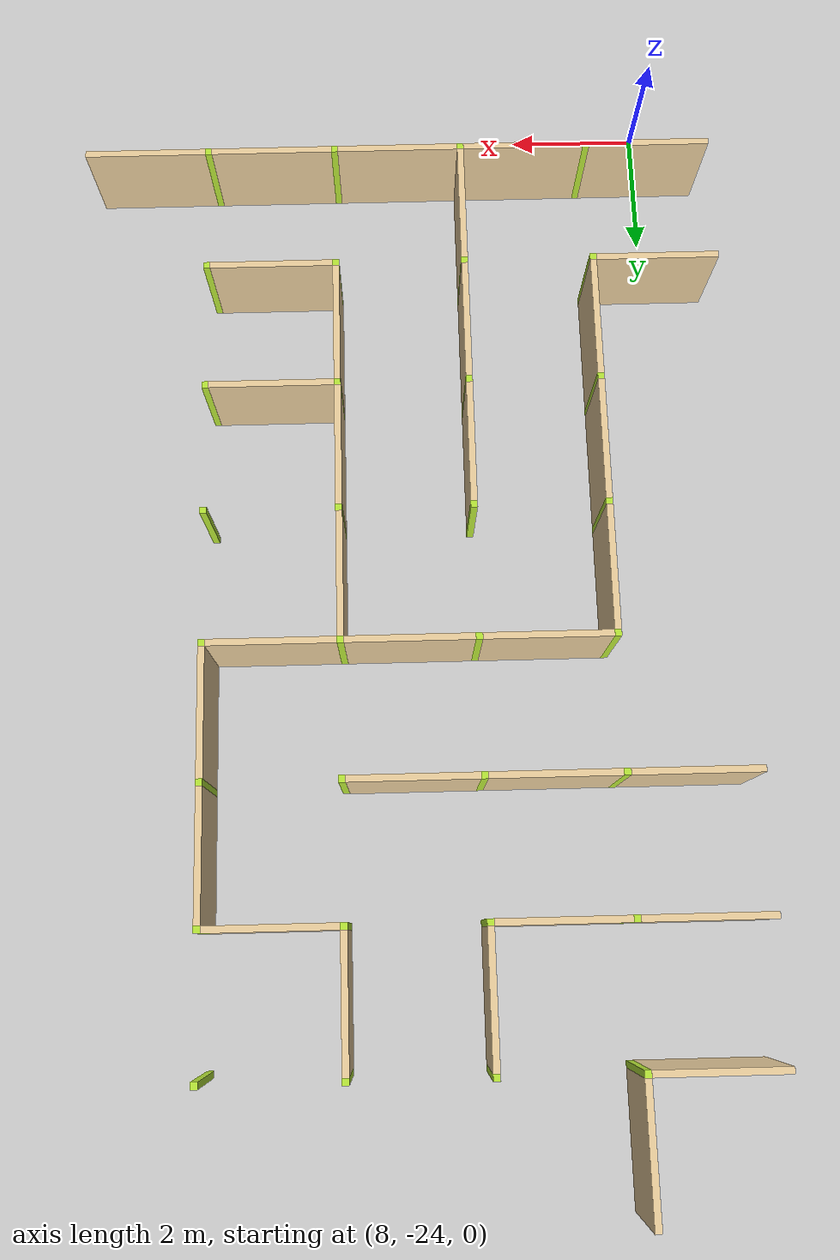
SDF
<sdf version="1.4">
 <world name="maze_world">
  <model name="ground">
   <static>true</static>
   <link name="ground_link">
    <collision name="collision1"><geometry><plane><normal>0 0 1</normal></plane></geometry></collision>
    <visual name="visual1"><geometry><plane><normal>0 0 1</normal><size>100 100</size></plane></geometry></visual>
   </link>
  </model>
  <model name="Untitled">
   <link name="Wall_8_7_v">
    <collision name="Wall_0_Collision">
     <geometry><box><size>1.9 0.1 1.5</size></box></geometry>
     <pose>0 0 0.75 0 -0 0</pose>
    </collision>
    <visual name="Wall_0_Visual">
     <pose>0 0 0.75 0 -0 0</pose>
     <geometry><box><size>1.9 0.1 1.5</size></box></geometry>
     <material>
      <script><uri>file://media/materials/scripts/gazebo.material</uri><name>Gazebo/Grey</name></script>
      <ambient>0.921569 0.807843 0.615686 1</ambient>
     </material>
     <meta><layer>0</layer></meta>
    </visual>
    <pose>9 -8.0 0 0 -0 1.5708</pose>
    <sensor name="my_contact" type="contact">
     <contact><collision>box_collision</collision><topic>/rover_collision</topic></contact>
    </sensor>
   </link>
   <link name="Wall_7_8_h">
    <collision name="Wall_0_Collision">
     <geometry><box><size>1.9 0.1 1.5</size></box></geometry>
     <pose>0 0 0.75 0 -0 0</pose>
    </collision>
    <visual name="Wall_0_Visual">
     <pose>0 0 0.75 0 -0 0</pose>
     <geometry><box><size>1.9 0.1 1.5</size></box></geometry>
     <material>
      <script><uri>file://media/materials/scripts/gazebo.material</uri><name>Gazebo/Grey</name></script>
      <ambient>0.921569 0.807843 0.615686 1</ambient>
     </material>
     <meta><layer>0</layer></meta>
    </visual>
    <pose>8.0 -9 0 0 -0 0</pose>
    <sensor name="my_contact" type="contact">
     <contact><collision>box_collision</collision><topic>/rover_collision</topic></contact>
    </sensor>
   </link>
   <link name="Joint_9_-9">
    <collision name="Wall_2_Collision">
     <geometry><box><size>0.1 0.1 1.5</size></box></geometry>
     <pose>0 0 0.75 0 -0 0</pose>
    </collision>
    <visual name="Wall_2_Visual">
     <pose>0 0 0.75 0 -0 0</pose>
     <geometry><box><size>0.1 0.1 1.5</size></box></geometry>
     <material>
      <script><uri>file://media/materials/scripts/gazebo.material</uri><name>Gazebo/Grey</name></script>
      <ambient>0.721569 0.907843 0.215686 1</ambient>
     </material>
     <meta><layer>0</layer></meta>
    </visual>
    <pose>9 -9 0 0 -0 0</pose>
    <sensor name="my_contact" type="contact">
     <contact><collision>box_collision</collision><topic>/rover_collision</topic></contact>
    </sensor>
   </link>
   <link name="Wall_9_8_v">
    <collision name="Wall_0_Collision">
     <geometry><box><size>1.9 0.1 1.5</size></box></geometry>
     <pose>0 0 0.75 0 -0 0</pose>
    </collision>
    <visual name="Wall_0_Visual">
     <pose>0 0 0.75 0 -0 0</pose>
     <geometry><box><size>1.9 0.1 1.5</size></box></geometry>
     <material>
      <script><uri>file://media/materials/scripts/gazebo.material</uri><name>Gazebo/Grey</name></script>
      <ambient>0.921569 0.807843 0.615686 1</ambient>
     </material>
     <meta><layer>0</layer></meta>
    </visual>
    <pose>11 -10.0 0 0 -0 1.5708</pose>
    <sensor name="my_contact" type="contact">
     <contact><collision>box_collision</collision><topic>/rover_collision</topic></contact>
    </sensor>
   </link>
   <link name="Joint_11_-9">
    <collision name="Wall_2_Collision">
     <geometry><box><size>0.1 0.1 1.5</size></box></geometry>
     <pose>0 0 0.75 0 -0 0</pose>
    </collision>
    <visual name="Wall_2_Visual">
     <pose>0 0 0.75 0 -0 0</pose>
     <geometry><box><size>0.1 0.1 1.5</size></box></geometry>
     <material>
      <script><uri>file://media/materials/scripts/gazebo.material</uri><name>Gazebo/Grey</name></script>
      <ambient>0.721569 0.907843 0.215686 1</ambient>
     </material>
     <meta><layer>0</layer></meta>
    </visual>
    <pose>11 -9 0 0 -0 0</pose>
    <sensor name="my_contact" type="contact">
     <contact><collision>box_collision</collision><topic>/rover_collision</topic></contact>
    </sensor>
   </link>
   <link name="Wall_10_8_v">
    <collision name="Wall_0_Collision">
     <geometry><box><size>1.9 0.1 1.5</size></box></geometry>
     <pose>0 0 0.75 0 -0 0</pose>
    </collision>
    <visual name="Wall_0_Visual">
     <pose>0 0 0.75 0 -0 0</pose>
     <geometry><box><size>1.9 0.1 1.5</size></box></geometry>
     <material>
      <script><uri>file://media/materials/scripts/gazebo.material</uri><name>Gazebo/Grey</name></script>
      <ambient>0.921569 0.807843 0.615686 1</ambient>
     </material>
     <meta><layer>0</layer></meta>
    </visual>
    <pose>13 -10.0 0 0 -0 1.5708</pose>
    <sensor name="my_contact" type="contact">
     <contact><collision>box_collision</collision><topic>/rover_collision</topic></contact>
    </sensor>
   </link>
   <link name="Joint_13_-9">
    <collision name="Wall_2_Collision">
     <geometry><box><size>0.1 0.1 1.5</size></box></geometry>
     <pose>0 0 0.75 0 -0 0</pose>
    </collision>
    <visual name="Wall_2_Visual">
     <pose>0 0 0.75 0 -0 0</pose>
     <geometry><box><size>0.1 0.1 1.5</size></box></geometry>
     <material>
      <script><uri>file://media/materials/scripts/gazebo.material</uri><name>Gazebo/Grey</name></script>
      <ambient>0.721569 0.907843 0.215686 1</ambient>
     </material>
     <meta><layer>0</layer></meta>
    </visual>
    <pose>13 -9 0 0 -0 0</pose>
    <sensor name="my_contact" type="contact">
     <contact><collision>box_collision</collision><topic>/rover_collision</topic></contact>
    </sensor>
   </link>
   <link name="Joint_15_-9">
    <collision name="Wall_2_Collision">
     <geometry><box><size>0.1 0.1 1.5</size></box></geometry>
     <pose>0 0 0.75 0 -0 0</pose>
    </collision>
    <visual name="Wall_2_Visual">
     <pose>0 0 0.75 0 -0 0</pose>
     <geometry><box><size>0.1 0.1 1.5</size></box></geometry>
     <material>
      <script><uri>file://media/materials/scripts/gazebo.material</uri><name>Gazebo/Grey</name></script>
      <ambient>0.721569 0.907843 0.215686 1</ambient>
     </material>
     <meta><layer>0</layer></meta>
    </visual>
    <pose>15 -9 0 0 -0 0</pose>
    <sensor name="my_contact" type="contact">
     <contact><collision>box_collision</collision><topic>/rover_collision</topic></contact>
    </sensor>
   </link>
   <link name="Wall_7_9_h">
    <collision name="Wall_0_Collision">
     <geometry><box><size>1.9 0.1 1.5</size></box></geometry>
     <pose>0 0 0.75 0 -0 0</pose>
    </collision>
    <visual name="Wall_0_Visual">
     <pose>0 0 0.75 0 -0 0</pose>
     <geometry><box><size>1.9 0.1 1.5</size></box></geometry>
     <material>
      <script><uri>file://media/materials/scripts/gazebo.material</uri><name>Gazebo/Grey</name></script>
      <ambient>0.921569 0.807843 0.615686 1</ambient>
     </material>
     <meta><layer>0</layer></meta>
    </visual>
    <pose>8.0 -11 0 0 -0 0</pose>
    <sensor name="my_contact" type="contact">
     <contact><collision>box_collision</collision><topic>/rover_collision</topic></contact>
    </sensor>
   </link>
   <link name="Wall_8_9_h">
    <collision name="Wall_0_Collision">
     <geometry><box><size>1.9 0.1 1.5</size></box></geometry>
     <pose>0 0 0.75 0 -0 0</pose>
    </collision>
    <visual name="Wall_0_Visual">
     <pose>0 0 0.75 0 -0 0</pose>
     <geometry><box><size>1.9 0.1 1.5</size></box></geometry>
     <material>
      <script><uri>file://media/materials/scripts/gazebo.material</uri><name>Gazebo/Grey</name></script>
      <ambient>0.921569 0.807843 0.615686 1</ambient>
     </material>
     <meta><layer>0</layer></meta>
    </visual>
    <pose>10.0 -11 0 0 -0 0</pose>
    <sensor name="my_contact" type="contact">
     <contact><collision>box_collision</collision><topic>/rover_collision</topic></contact>
    </sensor>
   </link>
   <link name="Joint_9_-11">
    <collision name="Wall_2_Collision">
     <geometry><box><size>0.1 0.1 1.5</size></box></geometry>
     <pose>0 0 0.75 0 -0 0</pose>
    </collision>
    <visual name="Wall_2_Visual">
     <pose>0 0 0.75 0 -0 0</pose>
     <geometry><box><size>0.1 0.1 1.5</size></box></geometry>
     <material>
      <script><uri>file://media/materials/scripts/gazebo.material</uri><name>Gazebo/Grey</name></script>
      <ambient>0.721569 0.907843 0.215686 1</ambient>
     </material>
     <meta><layer>0</layer></meta>
    </visual>
    <pose>9 -11 0 0 -0 0</pose>
    <sensor name="my_contact" type="contact">
     <contact><collision>box_collision</collision><topic>/rover_collision</topic></contact>
    </sensor>
   </link>
   <link name="Joint_11_-11">
    <collision name="Wall_2_Collision">
     <geometry><box><size>0.1 0.1 1.5</size></box></geometry>
     <pose>0 0 0.75 0 -0 0</pose>
    </collision>
    <visual name="Wall_2_Visual">
     <pose>0 0 0.75 0 -0 0</pose>
     <geometry><box><size>0.1 0.1 1.5</size></box></geometry>
     <material>
      <script><uri>file://media/materials/scripts/gazebo.material</uri><name>Gazebo/Grey</name></script>
      <ambient>0.721569 0.907843 0.215686 1</ambient>
     </material>
     <meta><layer>0</layer></meta>
    </visual>
    <pose>11 -11 0 0 -0 0</pose>
    <sensor name="my_contact" type="contact">
     <contact><collision>box_collision</collision><topic>/rover_collision</topic></contact>
    </sensor>
   </link>
   <link name="Wall_10_9_h">
    <collision name="Wall_0_Collision">
     <geometry><box><size>1.9 0.1 1.5</size></box></geometry>
     <pose>0 0 0.75 0 -0 0</pose>
    </collision>
    <visual name="Wall_0_Visual">
     <pose>0 0 0.75 0 -0 0</pose>
     <geometry><box><size>1.9 0.1 1.5</size></box></geometry>
     <material>
      <script><uri>file://media/materials/scripts/gazebo.material</uri><name>Gazebo/Grey</name></script>
      <ambient>0.921569 0.807843 0.615686 1</ambient>
     </material>
     <meta><layer>0</layer></meta>
    </visual>
    <pose>14.0 -11 0 0 -0 0</pose>
    <sensor name="my_contact" type="contact">
     <contact><collision>box_collision</collision><topic>/rover_collision</topic></contact>
    </sensor>
   </link>
   <link name="Joint_13_-11">
    <collision name="Wall_2_Collision">
     <geometry><box><size>0.1 0.1 1.5</size></box></geometry>
     <pose>0 0 0.75 0 -0 0</pose>
    </collision>
    <visual name="Wall_2_Visual">
     <pose>0 0 0.75 0 -0 0</pose>
     <geometry><box><size>0.1 0.1 1.5</size></box></geometry>
     <material>
      <script><uri>file://media/materials/scripts/gazebo.material</uri><name>Gazebo/Grey</name></script>
      <ambient>0.721569 0.907843 0.215686 1</ambient>
     </material>
     <meta><layer>0</layer></meta>
    </visual>
    <pose>13 -11 0 0 -0 0</pose>
    <sensor name="my_contact" type="contact">
     <contact><collision>box_collision</collision><topic>/rover_collision</topic></contact>
    </sensor>
   </link>
   <link name="Wall_11_9_v">
    <collision name="Wall_0_Collision">
     <geometry><box><size>1.9 0.1 1.5</size></box></geometry>
     <pose>0 0 0.75 0 -0 0</pose>
    </collision>
    <visual name="Wall_0_Visual">
     <pose>0 0 0.75 0 -0 0</pose>
     <geometry><box><size>1.9 0.1 1.5</size></box></geometry>
     <material>
      <script><uri>file://media/materials/scripts/gazebo.material</uri><name>Gazebo/Grey</name></script>
      <ambient>0.921569 0.807843 0.615686 1</ambient>
     </material>
     <meta><layer>0</layer></meta>
    </visual>
    <pose>15 -12.0 0 0 -0 1.5708</pose>
    <sensor name="my_contact" type="contact">
     <contact><collision>box_collision</collision><topic>/rover_collision</topic></contact>
    </sensor>
   </link>
   <link name="Joint_15_-11">
    <collision name="Wall_2_Collision">
     <geometry><box><size>0.1 0.1 1.5</size></box></geometry>
     <pose>0 0 0.75 0 -0 0</pose>
    </collision>
    <visual name="Wall_2_Visual">
     <pose>0 0 0.75 0 -0 0</pose>
     <geometry><box><size>0.1 0.1 1.5</size></box></geometry>
     <material>
      <script><uri>file://media/materials/scripts/gazebo.material</uri><name>Gazebo/Grey</name></script>
      <ambient>0.721569 0.907843 0.215686 1</ambient>
     </material>
     <meta><layer>0</layer></meta>
    </visual>
    <pose>15 -11 0 0 -0 0</pose>
    <sensor name="my_contact" type="contact">
     <contact><collision>box_collision</collision><topic>/rover_collision</topic></contact>
    </sensor>
   </link>
   <link name="Wall_7_10_h">
    <collision name="Wall_0_Collision">
     <geometry><box><size>1.9 0.1 1.5</size></box></geometry>
     <pose>0 0 0.75 0 -0 0</pose>
    </collision>
    <visual name="Wall_0_Visual">
     <pose>0 0 0.75 0 -0 0</pose>
     <geometry><box><size>1.9 0.1 1.5</size></box></geometry>
     <material>
      <script><uri>file://media/materials/scripts/gazebo.material</uri><name>Gazebo/Grey</name></script>
      <ambient>0.921569 0.807843 0.615686 1</ambient>
     </material>
     <meta><layer>0</layer></meta>
    </visual>
    <pose>8.0 -13 0 0 -0 0</pose>
    <sensor name="my_contact" type="contact">
     <contact><collision>box_collision</collision><topic>/rover_collision</topic></contact>
    </sensor>
   </link>
   <link name="Wall_8_10_h">
    <collision name="Wall_0_Collision">
     <geometry><box><size>1.9 0.1 1.5</size></box></geometry>
     <pose>0 0 0.75 0 -0 0</pose>
    </collision>
    <visual name="Wall_0_Visual">
     <pose>0 0 0.75 0 -0 0</pose>
     <geometry><box><size>1.9 0.1 1.5</size></box></geometry>
     <material>
      <script><uri>file://media/materials/scripts/gazebo.material</uri><name>Gazebo/Grey</name></script>
      <ambient>0.921569 0.807843 0.615686 1</ambient>
     </material>
     <meta><layer>0</layer></meta>
    </visual>
    <pose>10.0 -13 0 0 -0 0</pose>
    <sensor name="my_contact" type="contact">
     <contact><collision>box_collision</collision><topic>/rover_collision</topic></contact>
    </sensor>
   </link>
   <link name="Joint_9_-13">
    <collision name="Wall_2_Collision">
     <geometry><box><size>0.1 0.1 1.5</size></box></geometry>
     <pose>0 0 0.75 0 -0 0</pose>
    </collision>
    <visual name="Wall_2_Visual">
     <pose>0 0 0.75 0 -0 0</pose>
     <geometry><box><size>0.1 0.1 1.5</size></box></geometry>
     <material>
      <script><uri>file://media/materials/scripts/gazebo.material</uri><name>Gazebo/Grey</name></script>
      <ambient>0.721569 0.907843 0.215686 1</ambient>
     </material>
     <meta><layer>0</layer></meta>
    </visual>
    <pose>9 -13 0 0 -0 0</pose>
    <sensor name="my_contact" type="contact">
     <contact><collision>box_collision</collision><topic>/rover_collision</topic></contact>
    </sensor>
   </link>
   <link name="Wall_9_10_h">
    <collision name="Wall_0_Collision">
     <geometry><box><size>1.9 0.1 1.5</size></box></geometry>
     <pose>0 0 0.75 0 -0 0</pose>
    </collision>
    <visual name="Wall_0_Visual">
     <pose>0 0 0.75 0 -0 0</pose>
     <geometry><box><size>1.9 0.1 1.5</size></box></geometry>
     <material>
      <script><uri>file://media/materials/scripts/gazebo.material</uri><name>Gazebo/Grey</name></script>
      <ambient>0.921569 0.807843 0.615686 1</ambient>
     </material>
     <meta><layer>0</layer></meta>
    </visual>
    <pose>12.0 -13 0 0 -0 0</pose>
    <sensor name="my_contact" type="contact">
     <contact><collision>box_collision</collision><topic>/rover_collision</topic></contact>
    </sensor>
   </link>
   <link name="Joint_11_-13">
    <collision name="Wall_2_Collision">
     <geometry><box><size>0.1 0.1 1.5</size></box></geometry>
     <pose>0 0 0.75 0 -0 0</pose>
    </collision>
    <visual name="Wall_2_Visual">
     <pose>0 0 0.75 0 -0 0</pose>
     <geometry><box><size>0.1 0.1 1.5</size></box></geometry>
     <material>
      <script><uri>file://media/materials/scripts/gazebo.material</uri><name>Gazebo/Grey</name></script>
      <ambient>0.721569 0.907843 0.215686 1</ambient>
     </material>
     <meta><layer>0</layer></meta>
    </visual>
    <pose>11 -13 0 0 -0 0</pose>
    <sensor name="my_contact" type="contact">
     <contact><collision>box_collision</collision><topic>/rover_collision</topic></contact>
    </sensor>
   </link>
   <link name="Joint_13_-13">
    <collision name="Wall_2_Collision">
     <geometry><box><size>0.1 0.1 1.5</size></box></geometry>
     <pose>0 0 0.75 0 -0 0</pose>
    </collision>
    <visual name="Wall_2_Visual">
     <pose>0 0 0.75 0 -0 0</pose>
     <geometry><box><size>0.1 0.1 1.5</size></box></geometry>
     <material>
      <script><uri>file://media/materials/scripts/gazebo.material</uri><name>Gazebo/Grey</name></script>
      <ambient>0.721569 0.907843 0.215686 1</ambient>
     </material>
     <meta><layer>0</layer></meta>
    </visual>
    <pose>13 -13 0 0 -0 0</pose>
    <sensor name="my_contact" type="contact">
     <contact><collision>box_collision</collision><topic>/rover_collision</topic></contact>
    </sensor>
   </link>
   <link name="Wall_11_10_v">
    <collision name="Wall_0_Collision">
     <geometry><box><size>1.9 0.1 1.5</size></box></geometry>
     <pose>0 0 0.75 0 -0 0</pose>
    </collision>
    <visual name="Wall_0_Visual">
     <pose>0 0 0.75 0 -0 0</pose>
     <geometry><box><size>1.9 0.1 1.5</size></box></geometry>
     <material>
      <script><uri>file://media/materials/scripts/gazebo.material</uri><name>Gazebo/Grey</name></script>
      <ambient>0.921569 0.807843 0.615686 1</ambient>
     </material>
     <meta><layer>0</layer></meta>
    </visual>
    <pose>15 -14.0 0 0 -0 1.5708</pose>
    <sensor name="my_contact" type="contact">
     <contact><collision>box_collision</collision><topic>/rover_collision</topic></contact>
    </sensor>
   </link>
   <link name="Joint_15_-13">
    <collision name="Wall_2_Collision">
     <geometry><box><size>0.1 0.1 1.5</size></box></geometry>
     <pose>0 0 0.75 0 -0 0</pose>
    </collision>
    <visual name="Wall_2_Visual">
     <pose>0 0 0.75 0 -0 0</pose>
     <geometry><box><size>0.1 0.1 1.5</size></box></geometry>
     <material>
      <script><uri>file://media/materials/scripts/gazebo.material</uri><name>Gazebo/Grey</name></script>
      <ambient>0.721569 0.907843 0.215686 1</ambient>
     </material>
     <meta><layer>0</layer></meta>
    </visual>
    <pose>15 -13 0 0 -0 0</pose>
    <sensor name="my_contact" type="contact">
     <contact><collision>box_collision</collision><topic>/rover_collision</topic></contact>
    </sensor>
   </link>
   <link name="Wall_8_11_h">
    <collision name="Wall_0_Collision">
     <geometry><box><size>1.9 0.1 1.5</size></box></geometry>
     <pose>0 0 0.75 0 -0 0</pose>
    </collision>
    <visual name="Wall_0_Visual">
     <pose>0 0 0.75 0 -0 0</pose>
     <geometry><box><size>1.9 0.1 1.5</size></box></geometry>
     <material>
      <script><uri>file://media/materials/scripts/gazebo.material</uri><name>Gazebo/Grey</name></script>
      <ambient>0.921569 0.807843 0.615686 1</ambient>
     </material>
     <meta><layer>0</layer></meta>
    </visual>
    <pose>10.0 -15 0 0 -0 0</pose>
    <sensor name="my_contact" type="contact">
     <contact><collision>box_collision</collision><topic>/rover_collision</topic></contact>
    </sensor>
   </link>
   <link name="Wall_8_11_v">
    <collision name="Wall_0_Collision">
     <geometry><box><size>1.9 0.1 1.5</size></box></geometry>
     <pose>0 0 0.75 0 -0 0</pose>
    </collision>
    <visual name="Wall_0_Visual">
     <pose>0 0 0.75 0 -0 0</pose>
     <geometry><box><size>1.9 0.1 1.5</size></box></geometry>
     <material>
      <script><uri>file://media/materials/scripts/gazebo.material</uri><name>Gazebo/Grey</name></script>
      <ambient>0.921569 0.807843 0.615686 1</ambient>
     </material>
     <meta><layer>0</layer></meta>
    </visual>
    <pose>9 -16.0 0 0 -0 1.5708</pose>
    <sensor name="my_contact" type="contact">
     <contact><collision>box_collision</collision><topic>/rover_collision</topic></contact>
    </sensor>
   </link>
   <link name="Joint_9_-15">
    <collision name="Wall_2_Collision">
     <geometry><box><size>0.1 0.1 1.5</size></box></geometry>
     <pose>0 0 0.75 0 -0 0</pose>
    </collision>
    <visual name="Wall_2_Visual">
     <pose>0 0 0.75 0 -0 0</pose>
     <geometry><box><size>0.1 0.1 1.5</size></box></geometry>
     <material>
      <script><uri>file://media/materials/scripts/gazebo.material</uri><name>Gazebo/Grey</name></script>
      <ambient>0.721569 0.907843 0.215686 1</ambient>
     </material>
     <meta><layer>0</layer></meta>
    </visual>
    <pose>9 -15 0 0 -0 0</pose>
    <sensor name="my_contact" type="contact">
     <contact><collision>box_collision</collision><topic>/rover_collision</topic></contact>
    </sensor>
   </link>
   <link name="Wall_9_11_h">
    <collision name="Wall_0_Collision">
     <geometry><box><size>1.9 0.1 1.5</size></box></geometry>
     <pose>0 0 0.75 0 -0 0</pose>
    </collision>
    <visual name="Wall_0_Visual">
     <pose>0 0 0.75 0 -0 0</pose>
     <geometry><box><size>1.9 0.1 1.5</size></box></geometry>
     <material>
      <script><uri>file://media/materials/scripts/gazebo.material</uri><name>Gazebo/Grey</name></script>
      <ambient>0.921569 0.807843 0.615686 1</ambient>
     </material>
     <meta><layer>0</layer></meta>
    </visual>
    <pose>12.0 -15 0 0 -0 0</pose>
    <sensor name="my_contact" type="contact">
     <contact><collision>box_collision</collision><topic>/rover_collision</topic></contact>
    </sensor>
   </link>
   <link name="Joint_11_-15">
    <collision name="Wall_2_Collision">
     <geometry><box><size>0.1 0.1 1.5</size></box></geometry>
     <pose>0 0 0.75 0 -0 0</pose>
    </collision>
    <visual name="Wall_2_Visual">
     <pose>0 0 0.75 0 -0 0</pose>
     <geometry><box><size>0.1 0.1 1.5</size></box></geometry>
     <material>
      <script><uri>file://media/materials/scripts/gazebo.material</uri><name>Gazebo/Grey</name></script>
      <ambient>0.721569 0.907843 0.215686 1</ambient>
     </material>
     <meta><layer>0</layer></meta>
    </visual>
    <pose>11 -15 0 0 -0 0</pose>
    <sensor name="my_contact" type="contact">
     <contact><collision>box_collision</collision><topic>/rover_collision</topic></contact>
    </sensor>
   </link>
   <link name="Wall_10_11_h">
    <collision name="Wall_0_Collision">
     <geometry><box><size>1.9 0.1 1.5</size></box></geometry>
     <pose>0 0 0.75 0 -0 0</pose>
    </collision>
    <visual name="Wall_0_Visual">
     <pose>0 0 0.75 0 -0 0</pose>
     <geometry><box><size>1.9 0.1 1.5</size></box></geometry>
     <material>
      <script><uri>file://media/materials/scripts/gazebo.material</uri><name>Gazebo/Grey</name></script>
      <ambient>0.921569 0.807843 0.615686 1</ambient>
     </material>
     <meta><layer>0</layer></meta>
    </visual>
    <pose>14.0 -15 0 0 -0 0</pose>
    <sensor name="my_contact" type="contact">
     <contact><collision>box_collision</collision><topic>/rover_collision</topic></contact>
    </sensor>
   </link>
   <link name="Wall_10_11_v">
    <collision name="Wall_0_Collision">
     <geometry><box><size>1.9 0.1 1.5</size></box></geometry>
     <pose>0 0 0.75 0 -0 0</pose>
    </collision>
    <visual name="Wall_0_Visual">
     <pose>0 0 0.75 0 -0 0</pose>
     <geometry><box><size>1.9 0.1 1.5</size></box></geometry>
     <material>
      <script><uri>file://media/materials/scripts/gazebo.material</uri><name>Gazebo/Grey</name></script>
      <ambient>0.921569 0.807843 0.615686 1</ambient>
     </material>
     <meta><layer>0</layer></meta>
    </visual>
    <pose>13 -16.0 0 0 -0 1.5708</pose>
    <sensor name="my_contact" type="contact">
     <contact><collision>box_collision</collision><topic>/rover_collision</topic></contact>
    </sensor>
   </link>
   <link name="Joint_13_-15">
    <collision name="Wall_2_Collision">
     <geometry><box><size>0.1 0.1 1.5</size></box></geometry>
     <pose>0 0 0.75 0 -0 0</pose>
    </collision>
    <visual name="Wall_2_Visual">
     <pose>0 0 0.75 0 -0 0</pose>
     <geometry><box><size>0.1 0.1 1.5</size></box></geometry>
     <material>
      <script><uri>file://media/materials/scripts/gazebo.material</uri><name>Gazebo/Grey</name></script>
      <ambient>0.721569 0.907843 0.215686 1</ambient>
     </material>
     <meta><layer>0</layer></meta>
    </visual>
    <pose>13 -15 0 0 -0 0</pose>
    <sensor name="my_contact" type="contact">
     <contact><collision>box_collision</collision><topic>/rover_collision</topic></contact>
    </sensor>
   </link>
   <link name="Joint_15_-15">
    <collision name="Wall_2_Collision">
     <geometry><box><size>0.1 0.1 1.5</size></box></geometry>
     <pose>0 0 0.75 0 -0 0</pose>
    </collision>
    <visual name="Wall_2_Visual">
     <pose>0 0 0.75 0 -0 0</pose>
     <geometry><box><size>0.1 0.1 1.5</size></box></geometry>
     <material>
      <script><uri>file://media/materials/scripts/gazebo.material</uri><name>Gazebo/Grey</name></script>
      <ambient>0.721569 0.907843 0.215686 1</ambient>
     </material>
     <meta><layer>0</layer></meta>
    </visual>
    <pose>15 -15 0 0 -0 0</pose>
    <sensor name="my_contact" type="contact">
     <contact><collision>box_collision</collision><topic>/rover_collision</topic></contact>
    </sensor>
   </link>
   <link name="Wall_8_12_v">
    <collision name="Wall_0_Collision">
     <geometry><box><size>1.9 0.1 1.5</size></box></geometry>
     <pose>0 0 0.75 0 -0 0</pose>
    </collision>
    <visual name="Wall_0_Visual">
     <pose>0 0 0.75 0 -0 0</pose>
     <geometry><box><size>1.9 0.1 1.5</size></box></geometry>
     <material>
      <script><uri>file://media/materials/scripts/gazebo.material</uri><name>Gazebo/Grey</name></script>
      <ambient>0.921569 0.807843 0.615686 1</ambient>
     </material>
     <meta><layer>0</layer></meta>
    </visual>
    <pose>9 -18.0 0 0 -0 1.5708</pose>
    <sensor name="my_contact" type="contact">
     <contact><collision>box_collision</collision><topic>/rover_collision</topic></contact>
    </sensor>
   </link>
   <link name="Joint_9_-17">
    <collision name="Wall_2_Collision">
     <geometry><box><size>0.1 0.1 1.5</size></box></geometry>
     <pose>0 0 0.75 0 -0 0</pose>
    </collision>
    <visual name="Wall_2_Visual">
     <pose>0 0 0.75 0 -0 0</pose>
     <geometry><box><size>0.1 0.1 1.5</size></box></geometry>
     <material>
      <script><uri>file://media/materials/scripts/gazebo.material</uri><name>Gazebo/Grey</name></script>
      <ambient>0.721569 0.907843 0.215686 1</ambient>
     </material>
     <meta><layer>0</layer></meta>
    </visual>
    <pose>9 -17 0 0 -0 0</pose>
    <sensor name="my_contact" type="contact">
     <contact><collision>box_collision</collision><topic>/rover_collision</topic></contact>
    </sensor>
   </link>
   <link name="Wall_9_12_v">
    <collision name="Wall_0_Collision">
     <geometry><box><size>1.9 0.1 1.5</size></box></geometry>
     <pose>0 0 0.75 0 -0 0</pose>
    </collision>
    <visual name="Wall_0_Visual">
     <pose>0 0 0.75 0 -0 0</pose>
     <geometry><box><size>1.9 0.1 1.5</size></box></geometry>
     <material>
      <script><uri>file://media/materials/scripts/gazebo.material</uri><name>Gazebo/Grey</name></script>
      <ambient>0.921569 0.807843 0.615686 1</ambient>
     </material>
     <meta><layer>0</layer></meta>
    </visual>
    <pose>11 -18.0 0 0 -0 1.5708</pose>
    <sensor name="my_contact" type="contact">
     <contact><collision>box_collision</collision><topic>/rover_collision</topic></contact>
    </sensor>
   </link>
   <link name="Joint_11_-17">
    <collision name="Wall_2_Collision">
     <geometry><box><size>0.1 0.1 1.5</size></box></geometry>
     <pose>0 0 0.75 0 -0 0</pose>
    </collision>
    <visual name="Wall_2_Visual">
     <pose>0 0 0.75 0 -0 0</pose>
     <geometry><box><size>0.1 0.1 1.5</size></box></geometry>
     <material>
      <script><uri>file://media/materials/scripts/gazebo.material</uri><name>Gazebo/Grey</name></script>
      <ambient>0.721569 0.907843 0.215686 1</ambient>
     </material>
     <meta><layer>0</layer></meta>
    </visual>
    <pose>11 -17 0 0 -0 0</pose>
    <sensor name="my_contact" type="contact">
     <contact><collision>box_collision</collision><topic>/rover_collision</topic></contact>
    </sensor>
   </link>
   <link name="Wall_10_12_v">
    <collision name="Wall_0_Collision">
     <geometry><box><size>1.9 0.1 1.5</size></box></geometry>
     <pose>0 0 0.75 0 -0 0</pose>
    </collision>
    <visual name="Wall_0_Visual">
     <pose>0 0 0.75 0 -0 0</pose>
     <geometry><box><size>1.9 0.1 1.5</size></box></geometry>
     <material>
      <script><uri>file://media/materials/scripts/gazebo.material</uri><name>Gazebo/Grey</name></script>
      <ambient>0.921569 0.807843 0.615686 1</ambient>
     </material>
     <meta><layer>0</layer></meta>
    </visual>
    <pose>13 -18.0 0 0 -0 1.5708</pose>
    <sensor name="my_contact" type="contact">
     <contact><collision>box_collision</collision><topic>/rover_collision</topic></contact>
    </sensor>
   </link>
   <link name="Joint_13_-17">
    <collision name="Wall_2_Collision">
     <geometry><box><size>0.1 0.1 1.5</size></box></geometry>
     <pose>0 0 0.75 0 -0 0</pose>
    </collision>
    <visual name="Wall_2_Visual">
     <pose>0 0 0.75 0 -0 0</pose>
     <geometry><box><size>0.1 0.1 1.5</size></box></geometry>
     <material>
      <script><uri>file://media/materials/scripts/gazebo.material</uri><name>Gazebo/Grey</name></script>
      <ambient>0.721569 0.907843 0.215686 1</ambient>
     </material>
     <meta><layer>0</layer></meta>
    </visual>
    <pose>13 -17 0 0 -0 0</pose>
    <sensor name="my_contact" type="contact">
     <contact><collision>box_collision</collision><topic>/rover_collision</topic></contact>
    </sensor>
   </link>
   <link name="Joint_15_-17">
    <collision name="Wall_2_Collision">
     <geometry><box><size>0.1 0.1 1.5</size></box></geometry>
     <pose>0 0 0.75 0 -0 0</pose>
    </collision>
    <visual name="Wall_2_Visual">
     <pose>0 0 0.75 0 -0 0</pose>
     <geometry><box><size>0.1 0.1 1.5</size></box></geometry>
     <material>
      <script><uri>file://media/materials/scripts/gazebo.material</uri><name>Gazebo/Grey</name></script>
      <ambient>0.721569 0.907843 0.215686 1</ambient>
     </material>
     <meta><layer>0</layer></meta>
    </visual>
    <pose>15 -17 0 0 -0 0</pose>
    <sensor name="my_contact" type="contact">
     <contact><collision>box_collision</collision><topic>/rover_collision</topic></contact>
    </sensor>
   </link>
   <link name="Wall_8_13_v">
    <collision name="Wall_0_Collision">
     <geometry><box><size>1.9 0.1 1.5</size></box></geometry>
     <pose>0 0 0.75 0 -0 0</pose>
    </collision>
    <visual name="Wall_0_Visual">
     <pose>0 0 0.75 0 -0 0</pose>
     <geometry><box><size>1.9 0.1 1.5</size></box></geometry>
     <material>
      <script><uri>file://media/materials/scripts/gazebo.material</uri><name>Gazebo/Grey</name></script>
      <ambient>0.921569 0.807843 0.615686 1</ambient>
     </material>
     <meta><layer>0</layer></meta>
    </visual>
    <pose>9 -20.0 0 0 -0 1.5708</pose>
    <sensor name="my_contact" type="contact">
     <contact><collision>box_collision</collision><topic>/rover_collision</topic></contact>
    </sensor>
   </link>
   <link name="Joint_9_-19">
    <collision name="Wall_2_Collision">
     <geometry><box><size>0.1 0.1 1.5</size></box></geometry>
     <pose>0 0 0.75 0 -0 0</pose>
    </collision>
    <visual name="Wall_2_Visual">
     <pose>0 0 0.75 0 -0 0</pose>
     <geometry><box><size>0.1 0.1 1.5</size></box></geometry>
     <material>
      <script><uri>file://media/materials/scripts/gazebo.material</uri><name>Gazebo/Grey</name></script>
      <ambient>0.721569 0.907843 0.215686 1</ambient>
     </material>
     <meta><layer>0</layer></meta>
    </visual>
    <pose>9 -19 0 0 -0 0</pose>
    <sensor name="my_contact" type="contact">
     <contact><collision>box_collision</collision><topic>/rover_collision</topic></contact>
    </sensor>
   </link>
   <link name="Wall_9_13_v">
    <collision name="Wall_0_Collision">
     <geometry><box><size>1.9 0.1 1.5</size></box></geometry>
     <pose>0 0 0.75 0 -0 0</pose>
    </collision>
    <visual name="Wall_0_Visual">
     <pose>0 0 0.75 0 -0 0</pose>
     <geometry><box><size>1.9 0.1 1.5</size></box></geometry>
     <material>
      <script><uri>file://media/materials/scripts/gazebo.material</uri><name>Gazebo/Grey</name></script>
      <ambient>0.921569 0.807843 0.615686 1</ambient>
     </material>
     <meta><layer>0</layer></meta>
    </visual>
    <pose>11 -20.0 0 0 -0 1.5708</pose>
    <sensor name="my_contact" type="contact">
     <contact><collision>box_collision</collision><topic>/rover_collision</topic></contact>
    </sensor>
   </link>
   <link name="Joint_11_-19">
    <collision name="Wall_2_Collision">
     <geometry><box><size>0.1 0.1 1.5</size></box></geometry>
     <pose>0 0 0.75 0 -0 0</pose>
    </collision>
    <visual name="Wall_2_Visual">
     <pose>0 0 0.75 0 -0 0</pose>
     <geometry><box><size>0.1 0.1 1.5</size></box></geometry>
     <material>
      <script><uri>file://media/materials/scripts/gazebo.material</uri><name>Gazebo/Grey</name></script>
      <ambient>0.721569 0.907843 0.215686 1</ambient>
     </material>
     <meta><layer>0</layer></meta>
    </visual>
    <pose>11 -19 0 0 -0 0</pose>
    <sensor name="my_contact" type="contact">
     <contact><collision>box_collision</collision><topic>/rover_collision</topic></contact>
    </sensor>
   </link>
   <link name="Wall_10_13_h">
    <collision name="Wall_0_Collision">
     <geometry><box><size>1.9 0.1 1.5</size></box></geometry>
     <pose>0 0 0.75 0 -0 0</pose>
    </collision>
    <visual name="Wall_0_Visual">
     <pose>0 0 0.75 0 -0 0</pose>
     <geometry><box><size>1.9 0.1 1.5</size></box></geometry>
     <material>
      <script><uri>file://media/materials/scripts/gazebo.material</uri><name>Gazebo/Grey</name></script>
      <ambient>0.921569 0.807843 0.615686 1</ambient>
     </material>
     <meta><layer>0</layer></meta>
    </visual>
    <pose>14.0 -19 0 0 -0 0</pose>
    <sensor name="my_contact" type="contact">
     <contact><collision>box_collision</collision><topic>/rover_collision</topic></contact>
    </sensor>
   </link>
   <link name="Wall_10_13_v">
    <collision name="Wall_0_Collision">
     <geometry><box><size>1.9 0.1 1.5</size></box></geometry>
     <pose>0 0 0.75 0 -0 0</pose>
    </collision>
    <visual name="Wall_0_Visual">
     <pose>0 0 0.75 0 -0 0</pose>
     <geometry><box><size>1.9 0.1 1.5</size></box></geometry>
     <material>
      <script><uri>file://media/materials/scripts/gazebo.material</uri><name>Gazebo/Grey</name></script>
      <ambient>0.921569 0.807843 0.615686 1</ambient>
     </material>
     <meta><layer>0</layer></meta>
    </visual>
    <pose>13 -20.0 0 0 -0 1.5708</pose>
    <sensor name="my_contact" type="contact">
     <contact><collision>box_collision</collision><topic>/rover_collision</topic></contact>
    </sensor>
   </link>
   <link name="Joint_13_-19">
    <collision name="Wall_2_Collision">
     <geometry><box><size>0.1 0.1 1.5</size></box></geometry>
     <pose>0 0 0.75 0 -0 0</pose>
    </collision>
    <visual name="Wall_2_Visual">
     <pose>0 0 0.75 0 -0 0</pose>
     <geometry><box><size>0.1 0.1 1.5</size></box></geometry>
     <material>
      <script><uri>file://media/materials/scripts/gazebo.material</uri><name>Gazebo/Grey</name></script>
      <ambient>0.721569 0.907843 0.215686 1</ambient>
     </material>
     <meta><layer>0</layer></meta>
    </visual>
    <pose>13 -19 0 0 -0 0</pose>
    <sensor name="my_contact" type="contact">
     <contact><collision>box_collision</collision><topic>/rover_collision</topic></contact>
    </sensor>
   </link>
   <link name="Joint_15_-19">
    <collision name="Wall_2_Collision">
     <geometry><box><size>0.1 0.1 1.5</size></box></geometry>
     <pose>0 0 0.75 0 -0 0</pose>
    </collision>
    <visual name="Wall_2_Visual">
     <pose>0 0 0.75 0 -0 0</pose>
     <geometry><box><size>0.1 0.1 1.5</size></box></geometry>
     <material>
      <script><uri>file://media/materials/scripts/gazebo.material</uri><name>Gazebo/Grey</name></script>
      <ambient>0.721569 0.907843 0.215686 1</ambient>
     </material>
     <meta><layer>0</layer></meta>
    </visual>
    <pose>15 -19 0 0 -0 0</pose>
    <sensor name="my_contact" type="contact">
     <contact><collision>box_collision</collision><topic>/rover_collision</topic></contact>
    </sensor>
   </link>
   <link name="Wall_7_14_h">
    <collision name="Wall_0_Collision">
     <geometry><box><size>1.9 0.1 1.5</size></box></geometry>
     <pose>0 0 0.75 0 -0 0</pose>
    </collision>
    <visual name="Wall_0_Visual">
     <pose>0 0 0.75 0 -0 0</pose>
     <geometry><box><size>1.9 0.1 1.5</size></box></geometry>
     <material>
      <script><uri>file://media/materials/scripts/gazebo.material</uri><name>Gazebo/Grey</name></script>
      <ambient>0.921569 0.807843 0.615686 1</ambient>
     </material>
     <meta><layer>0</layer></meta>
    </visual>
    <pose>8.0 -21 0 0 -0 0</pose>
    <sensor name="my_contact" type="contact">
     <contact><collision>box_collision</collision><topic>/rover_collision</topic></contact>
    </sensor>
   </link>
   <link name="Wall_7_15_h">
    <collision name="Wall_0_Collision">
     <geometry><box><size>1.9 0.1 1.5</size></box></geometry>
     <pose>0 0 0.75 0 -0 0</pose>
    </collision>
    <visual name="Wall_0_Visual">
     <pose>0 0 0.75 0 -0 0</pose>
     <geometry><box><size>1.9 0.1 1.5</size></box></geometry>
     <material>
      <script><uri>file://media/materials/scripts/gazebo.material</uri><name>Gazebo/Grey</name></script>
      <ambient>0.921569 0.807843 0.615686 1</ambient>
     </material>
     <meta><layer>0</layer></meta>
    </visual>
    <pose>8.0 -23 0 0 -0 0</pose>
    <sensor name="my_contact" type="contact">
     <contact><collision>box_collision</collision><topic>/rover_collision</topic></contact>
    </sensor>
   </link>
   <link name="Joint_9_-21">
    <collision name="Wall_2_Collision">
     <geometry><box><size>0.1 0.1 1.5</size></box></geometry>
     <pose>0 0 0.75 0 -0 0</pose>
    </collision>
    <visual name="Wall_2_Visual">
     <pose>0 0 0.75 0 -0 0</pose>
     <geometry><box><size>0.1 0.1 1.5</size></box></geometry>
     <material>
      <script><uri>file://media/materials/scripts/gazebo.material</uri><name>Gazebo/Grey</name></script>
      <ambient>0.721569 0.907843 0.215686 1</ambient>
     </material>
     <meta><layer>0</layer></meta>
    </visual>
    <pose>9 -21 0 0 -0 0</pose>
    <sensor name="my_contact" type="contact">
     <contact><collision>box_collision</collision><topic>/rover_collision</topic></contact>
    </sensor>
   </link>
   <link name="Wall_8_15_h">
    <collision name="Wall_0_Collision">
     <geometry><box><size>1.9 0.1 1.5</size></box></geometry>
     <pose>0 0 0.75 0 -0 0</pose>
    </collision>
    <visual name="Wall_0_Visual">
     <pose>0 0 0.75 0 -0 0</pose>
     <geometry><box><size>1.9 0.1 1.5</size></box></geometry>
     <material>
      <script><uri>file://media/materials/scripts/gazebo.material</uri><name>Gazebo/Grey</name></script>
      <ambient>0.921569 0.807843 0.615686 1</ambient>
     </material>
     <meta><layer>0</layer></meta>
    </visual>
    <pose>10.0 -23 0 0 -0 0</pose>
    <sensor name="my_contact" type="contact">
     <contact><collision>box_collision</collision><topic>/rover_collision</topic></contact>
    </sensor>
   </link>
   <link name="Joint_9_-23">
    <collision name="Wall_2_Collision">
     <geometry><box><size>0.1 0.1 1.5</size></box></geometry>
     <pose>0 0 0.75 0 -0 0</pose>
    </collision>
    <visual name="Wall_2_Visual">
     <pose>0 0 0.75 0 -0 0</pose>
     <geometry><box><size>0.1 0.1 1.5</size></box></geometry>
     <material>
      <script><uri>file://media/materials/scripts/gazebo.material</uri><name>Gazebo/Grey</name></script>
      <ambient>0.721569 0.907843 0.215686 1</ambient>
     </material>
     <meta><layer>0</layer></meta>
    </visual>
    <pose>9 -23 0 0 -0 0</pose>
    <sensor name="my_contact" type="contact">
     <contact><collision>box_collision</collision><topic>/rover_collision</topic></contact>
    </sensor>
   </link>
   <link name="Wall_9_14_v">
    <collision name="Wall_0_Collision">
     <geometry><box><size>1.9 0.1 1.5</size></box></geometry>
     <pose>0 0 0.75 0 -0 0</pose>
    </collision>
    <visual name="Wall_0_Visual">
     <pose>0 0 0.75 0 -0 0</pose>
     <geometry><box><size>1.9 0.1 1.5</size></box></geometry>
     <material>
      <script><uri>file://media/materials/scripts/gazebo.material</uri><name>Gazebo/Grey</name></script>
      <ambient>0.921569 0.807843 0.615686 1</ambient>
     </material>
     <meta><layer>0</layer></meta>
    </visual>
    <pose>11 -22.0 0 0 -0 1.5708</pose>
    <sensor name="my_contact" type="contact">
     <contact><collision>box_collision</collision><topic>/rover_collision</topic></contact>
    </sensor>
   </link>
   <link name="Joint_11_-21">
    <collision name="Wall_2_Collision">
     <geometry><box><size>0.1 0.1 1.5</size></box></geometry>
     <pose>0 0 0.75 0 -0 0</pose>
    </collision>
    <visual name="Wall_2_Visual">
     <pose>0 0 0.75 0 -0 0</pose>
     <geometry><box><size>0.1 0.1 1.5</size></box></geometry>
     <material>
      <script><uri>file://media/materials/scripts/gazebo.material</uri><name>Gazebo/Grey</name></script>
      <ambient>0.721569 0.907843 0.215686 1</ambient>
     </material>
     <meta><layer>0</layer></meta>
    </visual>
    <pose>11 -21 0 0 -0 0</pose>
    <sensor name="my_contact" type="contact">
     <contact><collision>box_collision</collision><topic>/rover_collision</topic></contact>
    </sensor>
   </link>
   <link name="Wall_9_15_h">
    <collision name="Wall_0_Collision">
     <geometry><box><size>1.9 0.1 1.5</size></box></geometry>
     <pose>0 0 0.75 0 -0 0</pose>
    </collision>
    <visual name="Wall_0_Visual">
     <pose>0 0 0.75 0 -0 0</pose>
     <geometry><box><size>1.9 0.1 1.5</size></box></geometry>
     <material>
      <script><uri>file://media/materials/scripts/gazebo.material</uri><name>Gazebo/Grey</name></script>
      <ambient>0.921569 0.807843 0.615686 1</ambient>
     </material>
     <meta><layer>0</layer></meta>
    </visual>
    <pose>12.0 -23 0 0 -0 0</pose>
    <sensor name="my_contact" type="contact">
     <contact><collision>box_collision</collision><topic>/rover_collision</topic></contact>
    </sensor>
   </link>
   <link name="Joint_11_-23">
    <collision name="Wall_2_Collision">
     <geometry><box><size>0.1 0.1 1.5</size></box></geometry>
     <pose>0 0 0.75 0 -0 0</pose>
    </collision>
    <visual name="Wall_2_Visual">
     <pose>0 0 0.75 0 -0 0</pose>
     <geometry><box><size>0.1 0.1 1.5</size></box></geometry>
     <material>
      <script><uri>file://media/materials/scripts/gazebo.material</uri><name>Gazebo/Grey</name></script>
      <ambient>0.721569 0.907843 0.215686 1</ambient>
     </material>
     <meta><layer>0</layer></meta>
    </visual>
    <pose>11 -23 0 0 -0 0</pose>
    <sensor name="my_contact" type="contact">
     <contact><collision>box_collision</collision><topic>/rover_collision</topic></contact>
    </sensor>
   </link>
   <link name="Wall_10_14_h">
    <collision name="Wall_0_Collision">
     <geometry><box><size>1.9 0.1 1.5</size></box></geometry>
     <pose>0 0 0.75 0 -0 0</pose>
    </collision>
    <visual name="Wall_0_Visual">
     <pose>0 0 0.75 0 -0 0</pose>
     <geometry><box><size>1.9 0.1 1.5</size></box></geometry>
     <material>
      <script><uri>file://media/materials/scripts/gazebo.material</uri><name>Gazebo/Grey</name></script>
      <ambient>0.921569 0.807843 0.615686 1</ambient>
     </material>
     <meta><layer>0</layer></meta>
    </visual>
    <pose>14.0 -21 0 0 -0 0</pose>
    <sensor name="my_contact" type="contact">
     <contact><collision>box_collision</collision><topic>/rover_collision</topic></contact>
    </sensor>
   </link>
   <link name="Joint_13_-21">
    <collision name="Wall_2_Collision">
     <geometry><box><size>0.1 0.1 1.5</size></box></geometry>
     <pose>0 0 0.75 0 -0 0</pose>
    </collision>
    <visual name="Wall_2_Visual">
     <pose>0 0 0.75 0 -0 0</pose>
     <geometry><box><size>0.1 0.1 1.5</size></box></geometry>
     <material>
      <script><uri>file://media/materials/scripts/gazebo.material</uri><name>Gazebo/Grey</name></script>
      <ambient>0.721569 0.907843 0.215686 1</ambient>
     </material>
     <meta><layer>0</layer></meta>
    </visual>
    <pose>13 -21 0 0 -0 0</pose>
    <sensor name="my_contact" type="contact">
     <contact><collision>box_collision</collision><topic>/rover_collision</topic></contact>
    </sensor>
   </link>
   <link name="Wall_10_15_h">
    <collision name="Wall_0_Collision">
     <geometry><box><size>1.9 0.1 1.5</size></box></geometry>
     <pose>0 0 0.75 0 -0 0</pose>
    </collision>
    <visual name="Wall_0_Visual">
     <pose>0 0 0.75 0 -0 0</pose>
     <geometry><box><size>1.9 0.1 1.5</size></box></geometry>
     <material>
      <script><uri>file://media/materials/scripts/gazebo.material</uri><name>Gazebo/Grey</name></script>
      <ambient>0.921569 0.807843 0.615686 1</ambient>
     </material>
     <meta><layer>0</layer></meta>
    </visual>
    <pose>14.0 -23 0 0 -0 0</pose>
    <sensor name="my_contact" type="contact">
     <contact><collision>box_collision</collision><topic>/rover_collision</topic></contact>
    </sensor>
   </link>
   <link name="Joint_13_-23">
    <collision name="Wall_2_Collision">
     <geometry><box><size>0.1 0.1 1.5</size></box></geometry>
     <pose>0 0 0.75 0 -0 0</pose>
    </collision>
    <visual name="Wall_2_Visual">
     <pose>0 0 0.75 0 -0 0</pose>
     <geometry><box><size>0.1 0.1 1.5</size></box></geometry>
     <material>
      <script><uri>file://media/materials/scripts/gazebo.material</uri><name>Gazebo/Grey</name></script>
      <ambient>0.721569 0.907843 0.215686 1</ambient>
     </material>
     <meta><layer>0</layer></meta>
    </visual>
    <pose>13 -23 0 0 -0 0</pose>
    <sensor name="my_contact" type="contact">
     <contact><collision>box_collision</collision><topic>/rover_collision</topic></contact>
    </sensor>
   </link>
   <link name="Joint_15_-21">
    <collision name="Wall_2_Collision">
     <geometry><box><size>0.1 0.1 1.5</size></box></geometry>
     <pose>0 0 0.75 0 -0 0</pose>
    </collision>
    <visual name="Wall_2_Visual">
     <pose>0 0 0.75 0 -0 0</pose>
     <geometry><box><size>0.1 0.1 1.5</size></box></geometry>
     <material>
      <script><uri>file://media/materials/scripts/gazebo.material</uri><name>Gazebo/Grey</name></script>
      <ambient>0.721569 0.907843 0.215686 1</ambient>
     </material>
     <meta><layer>0</layer></meta>
    </visual>
    <pose>15 -21 0 0 -0 0</pose>
    <sensor name="my_contact" type="contact">
     <contact><collision>box_collision</collision><topic>/rover_collision</topic></contact>
    </sensor>
   </link>
   <link name="Wall_11_15_h">
    <collision name="Wall_0_Collision">
     <geometry><box><size>1.9 0.1 1.5</size></box></geometry>
     <pose>0 0 0.75 0 -0 0</pose>
    </collision>
    <visual name="Wall_0_Visual">
     <pose>0 0 0.75 0 -0 0</pose>
     <geometry><box><size>1.9 0.1 1.5</size></box></geometry>
     <material>
      <script><uri>file://media/materials/scripts/gazebo.material</uri><name>Gazebo/Grey</name></script>
      <ambient>0.921569 0.807843 0.615686 1</ambient>
     </material>
     <meta><layer>0</layer></meta>
    </visual>
    <pose>16.0 -23 0 0 -0 0</pose>
    <sensor name="my_contact" type="contact">
     <contact><collision>box_collision</collision><topic>/rover_collision</topic></contact>
    </sensor>
   </link>
   <link name="Joint_15_-23">
    <collision name="Wall_2_Collision">
     <geometry><box><size>0.1 0.1 1.5</size></box></geometry>
     <pose>0 0 0.75 0 -0 0</pose>
    </collision>
    <visual name="Wall_2_Visual">
     <pose>0 0 0.75 0 -0 0</pose>
     <geometry><box><size>0.1 0.1 1.5</size></box></geometry>
     <material>
      <script><uri>file://media/materials/scripts/gazebo.material</uri><name>Gazebo/Grey</name></script>
      <ambient>0.721569 0.907843 0.215686 1</ambient>
     </material>
     <meta><layer>0</layer></meta>
    </visual>
    <pose>15 -23 0 0 -0 0</pose>
    <sensor name="my_contact" type="contact">
     <contact><collision>box_collision</collision><topic>/rover_collision</topic></contact>
    </sensor>
   </link>
   <static>1</static>
  </model>
 </world>
</sdf>
